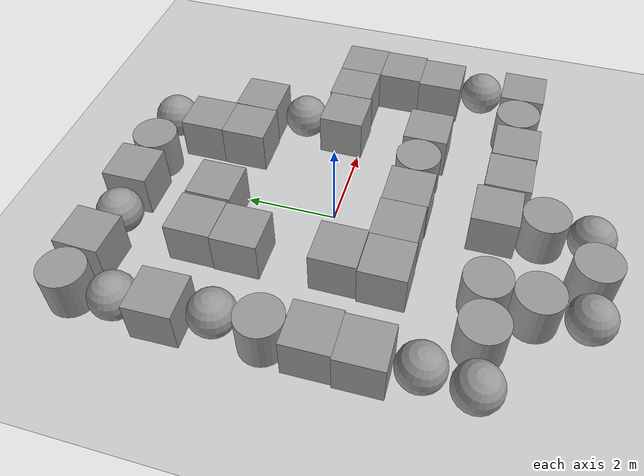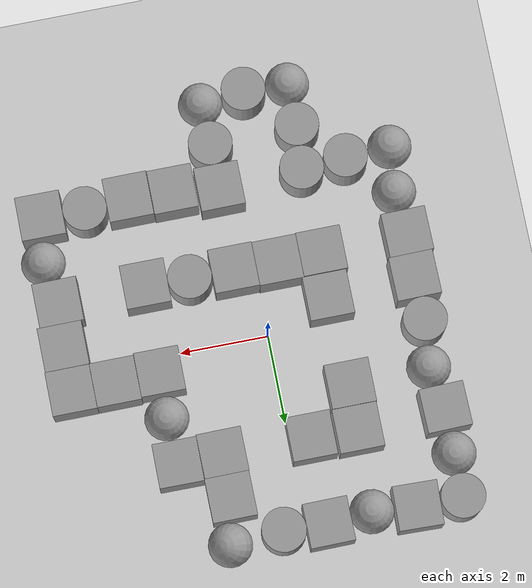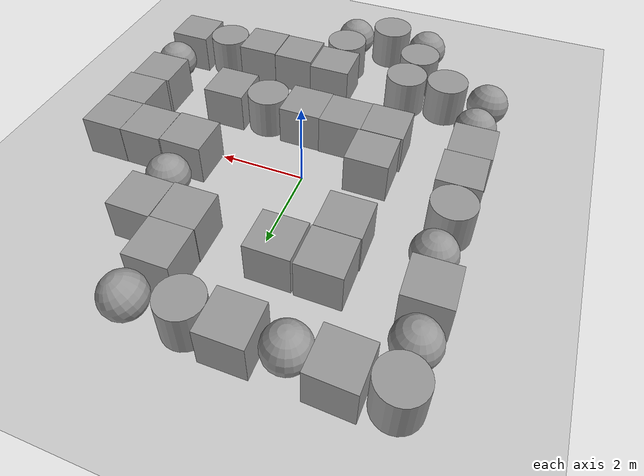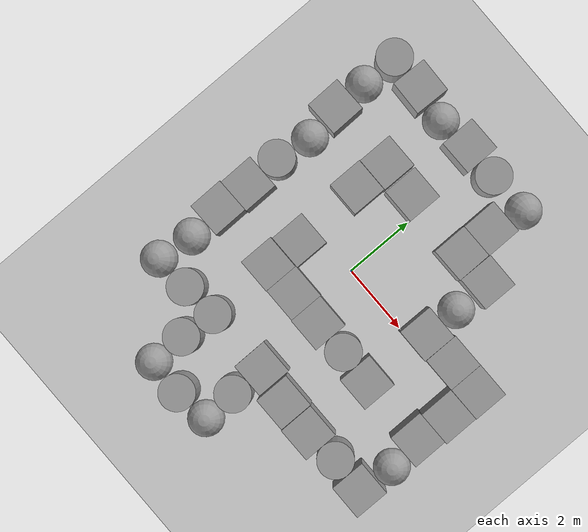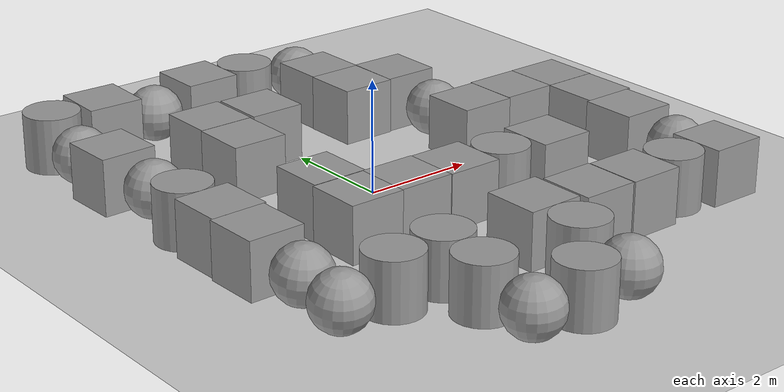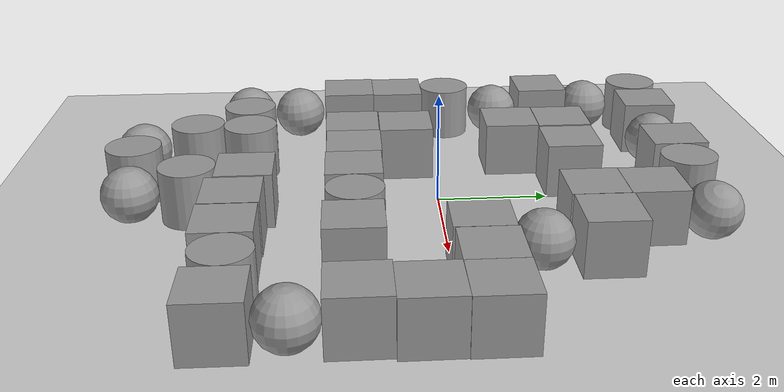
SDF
<sdf version="1.6">
 <world name="default">
  <light name="sun" type="directional">
   <pose>0 0 10 0 -0 0</pose>
   <diffuse>0.8 0.8 0.8 1</diffuse>
   <specular>0.2 0.2 0.2 1</specular>
   <attenuation>
    <range>1000</range>
    <constant>0.9</constant>
    <linear>0.01</linear>
    <quadratic>0.001</quadratic>
   </attenuation>
   <direction>-0.5 0.1 -0.9</direction>
  </light>
  <model name="ground_plane">
   <static>1</static>
   <link name="link">
    <collision name="collision">
     <geometry><plane><normal>0 0 1</normal><size>100 100</size></plane></geometry>
     <surface>
      <contact><collide_bitmask>65535</collide_bitmask></contact>
      <friction><ode><mu>100</mu><mu2>50</mu2></ode></friction>
     </surface>
    </collision>
    <visual name="visual">
     <cast_shadows>0</cast_shadows>
     <geometry><plane><normal>0 0 1</normal><size>100 100</size></plane></geometry>
     <material>
      <script><uri>file://media/materials/scripts/gazebo.material</uri><name>Gazebo/Grey</name></script>
     </material>
    </visual>
   </link>
  </model>
  <gravity>0 0 -9.8</gravity>
  <magnetic_field>6e-06 2.3e-05 -4.2e-05</magnetic_field>
  <atmosphere type="adiabatic"/>
  <physics name="default_physics" default="0" type="ode">
   <max_step_size>0.001</max_step_size>
   <real_time_factor>1</real_time_factor>
   <real_time_update_rate>1000</real_time_update_rate>
  </physics>
  <scene><ambient>0.4 0.4 0.4 1</ambient><background>0.7 0.7 0.7 1</background><shadows>1</shadows></scene>
  <audio><device>default</device></audio>
  <spherical_coordinates>
   <surface_model>EARTH_WGS84</surface_model>
   <latitude_deg>0</latitude_deg>
   <longitude_deg>0</longitude_deg>
   <elevation>0</elevation>
   <heading_deg>0</heading_deg>
  </spherical_coordinates>
  <model name="unit_box">
   <pose>-1.52173 -1.52448 0.5 0 -0 9.6e-05</pose>
   <link name="link">
    <inertial>
     <mass>1</mass>
     <inertia>
      <ixx>0.166667</ixx>
      <ixy>0</ixy>
      <ixz>0</ixz>
      <iyy>0.166667</iyy>
      <iyz>0</iyz>
      <izz>0.166667</izz>
     </inertia>
    </inertial>
    <collision name="collision"><geometry><box><size>1 1 1</size></box></geometry></collision>
    <visual name="visual">
     <geometry><box><size>1 1 1</size></box></geometry>
     <material>
      <script><name>Gazebo/Grey</name><uri>file://media/materials/scripts/gazebo.material</uri></script>
     </material>
    </visual>
   </link>
  </model>
  <model name="unit_box_0">
   <pose>-0.521576 -1.51043 0.5 0 -0 0.000106</pose>
   <link name="link">
    <inertial>
     <mass>1</mass>
     <inertia>
      <ixx>0.166667</ixx>
      <ixy>0</ixy>
      <ixz>0</ixz>
      <iyy>0.166667</iyy>
      <iyz>0</iyz>
      <izz>0.166667</izz>
     </inertia>
    </inertial>
    <collision name="collision"><geometry><box><size>1 1 1</size></box></geometry></collision>
    <visual name="visual">
     <geometry><box><size>1 1 1</size></box></geometry>
     <material>
      <script><name>Gazebo/Grey</name><uri>file://media/materials/scripts/gazebo.material</uri></script>
     </material>
    </visual>
   </link>
  </model>
  <model name="unit_box_1">
   <pose>0.478462 -1.52753 0.5 0 -0 8.8e-05</pose>
   <link name="link">
    <inertial>
     <mass>1</mass>
     <inertia>
      <ixx>0.166667</ixx>
      <ixy>0</ixy>
      <ixz>0</ixz>
      <iyy>0.166667</iyy>
      <iyz>0</iyz>
      <izz>0.166667</izz>
     </inertia>
    </inertial>
    <collision name="collision"><geometry><box><size>1 1 1</size></box></geometry></collision>
    <visual name="visual">
     <geometry><box><size>1 1 1</size></box></geometry>
     <material>
      <script><name>Gazebo/Grey</name><uri>file://media/materials/scripts/gazebo.material</uri></script>
     </material>
    </visual>
   </link>
  </model>
  <model name="unit_box_2">
   <pose>-1.47189 -0.51075 0.5 0 -0 0.001194</pose>
   <link name="link">
    <inertial>
     <mass>1</mass>
     <inertia>
      <ixx>0.166667</ixx>
      <ixy>0</ixy>
      <ixz>0</ixz>
      <iyy>0.166667</iyy>
      <iyz>0</iyz>
      <izz>0.166667</izz>
     </inertia>
    </inertial>
    <collision name="collision"><geometry><box><size>1 1 1</size></box></geometry></collision>
    <visual name="visual">
     <geometry><box><size>1 1 1</size></box></geometry>
     <material>
      <script><name>Gazebo/Grey</name><uri>file://media/materials/scripts/gazebo.material</uri></script>
     </material>
    </visual>
   </link>
  </model>
  <model name="unit_box_4">
   <pose>-1.54883 1.52167 0.5 0 -0 0</pose>
   <link name="link">
    <inertial>
     <mass>1</mass>
     <inertia>
      <ixx>0.166667</ixx>
      <ixy>0</ixy>
      <ixz>0</ixz>
      <iyy>0.166667</iyy>
      <iyz>0</iyz>
      <izz>0.166667</izz>
     </inertia>
    </inertial>
    <collision name="collision"><geometry><box><size>1 1 1</size></box></geometry></collision>
    <visual name="visual">
     <geometry><box><size>1 1 1</size></box></geometry>
     <material>
      <script><name>Gazebo/Grey</name><uri>file://media/materials/scripts/gazebo.material</uri></script>
     </material>
    </visual>
   </link>
  </model>
  <model name="unit_box_5">
   <pose>-1.53002 2.52679 0.5 -0 -0 -0</pose>
   <link name="link">
    <inertial>
     <mass>1</mass>
     <inertia>
      <ixx>0.166667</ixx>
      <ixy>0</ixy>
      <ixz>0</ixz>
      <iyy>0.166667</iyy>
      <iyz>0</iyz>
      <izz>0.166667</izz>
     </inertia>
    </inertial>
    <collision name="collision"><geometry><box><size>1 1 1</size></box></geometry></collision>
    <visual name="visual">
     <geometry><box><size>1 1 1</size></box></geometry>
     <material>
      <script><name>Gazebo/Grey</name><uri>file://media/materials/scripts/gazebo.material</uri></script>
     </material>
    </visual>
   </link>
  </model>
  <model name="unit_box_6">
   <pose>-0.478805 2.50195 0.5 0 -0 -0.000486</pose>
   <link name="link">
    <inertial>
     <mass>1</mass>
     <inertia>
      <ixx>0.166667</ixx>
      <ixy>0</ixy>
      <ixz>0</ixz>
      <iyy>0.166667</iyy>
      <iyz>0</iyz>
      <izz>0.166667</izz>
     </inertia>
    </inertial>
    <collision name="collision"><geometry><box><size>1 1 1</size></box></geometry></collision>
    <visual name="visual">
     <geometry><box><size>1 1 1</size></box></geometry>
     <material>
      <script><name>Gazebo/Grey</name><uri>file://media/materials/scripts/gazebo.material</uri></script>
     </material>
    </visual>
   </link>
  </model>
  <model name="unit_box_8">
   <pose>1.51965 2.48559 0.5 0 -0 0.006459</pose>
   <link name="link">
    <inertial>
     <mass>1</mass>
     <inertia>
      <ixx>0.166667</ixx>
      <ixy>0</ixy>
      <ixz>0</ixz>
      <iyy>0.166667</iyy>
      <iyz>0</iyz>
      <izz>0.166667</izz>
     </inertia>
    </inertial>
    <collision name="collision"><geometry><box><size>1 1 1</size></box></geometry></collision>
    <visual name="visual">
     <geometry><box><size>1 1 1</size></box></geometry>
     <material>
      <script><name>Gazebo/Grey</name><uri>file://media/materials/scripts/gazebo.material</uri></script>
     </material>
    </visual>
   </link>
  </model>
  <model name="unit_box_9">
   <pose>2.52576 2.51434 0.5 0 0 -0.006127</pose>
   <link name="link">
    <inertial>
     <mass>1</mass>
     <inertia>
      <ixx>0.166667</ixx>
      <ixy>0</ixy>
      <ixz>0</ixz>
      <iyy>0.166667</iyy>
      <iyz>0</iyz>
      <izz>0.166667</izz>
     </inertia>
    </inertial>
    <collision name="collision"><geometry><box><size>1 1 1</size></box></geometry></collision>
    <visual name="visual">
     <geometry><box><size>1 1 1</size></box></geometry>
     <material>
      <script><name>Gazebo/Grey</name><uri>file://media/materials/scripts/gazebo.material</uri></script>
     </material>
    </visual>
   </link>
  </model>
  <model name="unit_sphere">
   <pose>2.58206 1.44817 0.5 -0.017448 0.001388 0.009787</pose>
   <link name="link">
    <inertial>
     <mass>1</mass>
     <inertia><ixx>0.1</ixx><ixy>0</ixy><ixz>0</ixz><iyy>0.1</iyy><iyz>0</iyz><izz>0.1</izz></inertia>
    </inertial>
    <collision name="collision"><geometry><sphere><radius>0.5</radius></sphere></geometry></collision>
    <visual name="visual">
     <geometry><sphere><radius>0.5</radius></sphere></geometry>
     <material>
      <script><name>Gazebo/Grey</name><uri>file://media/materials/scripts/gazebo.material</uri></script>
     </material>
    </visual>
   </link>
  </model>
  <model name="unit_cylinder">
   <pose>1.47908 -1.51988 0.499994 -4e-06 1e-06 0.001973</pose>
   <link name="link">
    <inertial>
     <mass>1</mass>
     <inertia><ixx>0.145833</ixx><ixy>0</ixy><ixz>0</ixz><iyy>0.145833</iyy><iyz>0</iyz><izz>0.125</izz></inertia>
    </inertial>
    <collision name="collision">
     <geometry><cylinder><radius>0.5</radius><length>1</length></cylinder></geometry>
    </collision>
    <visual name="visual">
     <geometry><cylinder><radius>0.5</radius><length>1</length></cylinder></geometry>
     <material>
      <script><name>Gazebo/Grey</name><uri>file://media/materials/scripts/gazebo.material</uri></script>
     </material>
    </visual>
   </link>
  </model>
  <model name="unit_box_10">
   <pose>2.53768 0.439783 0.5 -0 -0 -0.004187</pose>
   <link name="link">
    <inertial>
     <mass>1</mass>
     <inertia>
      <ixx>0.166667</ixx>
      <ixy>0</ixy>
      <ixz>0</ixz>
      <iyy>0.166667</iyy>
      <iyz>0</iyz>
      <izz>0.166667</izz>
     </inertia>
    </inertial>
    <collision name="collision"><geometry><box><size>1 1 1</size></box></geometry></collision>
    <visual name="visual">
     <geometry><box><size>1 1 1</size></box></geometry>
     <material>
      <script><name>Gazebo/Grey</name><uri>file://media/materials/scripts/gazebo.material</uri></script>
     </material>
    </visual>
   </link>
  </model>
  <model name="unit_box_3">
   <pose>2.47904 -1.55707 0.5 -0 -0 -0.001522</pose>
   <link name="link">
    <inertial>
     <mass>1</mass>
     <inertia>
      <ixx>0.166667</ixx>
      <ixy>0</ixy>
      <ixz>0</ixz>
      <iyy>0.166667</iyy>
      <iyz>0</iyz>
      <izz>0.166667</izz>
     </inertia>
    </inertial>
    <collision name="collision"><geometry><box><size>1 1 1</size></box></geometry></collision>
    <visual name="visual">
     <geometry><box><size>1 1 1</size></box></geometry>
     <material>
      <script><name>Gazebo/Grey</name><uri>file://media/materials/scripts/gazebo.material</uri></script>
     </material>
    </visual>
   </link>
  </model>
  <model name="unit_box_7">
   <pose>3.54076 0.473404 0.5 0 -0 0.002006</pose>
   <link name="link">
    <inertial>
     <mass>1</mass>
     <inertia>
      <ixx>0.166667</ixx>
      <ixy>0</ixy>
      <ixz>0</ixz>
      <iyy>0.166667</iyy>
      <iyz>0</iyz>
      <izz>0.166667</izz>
     </inertia>
    </inertial>
    <collision name="collision"><geometry><box><size>1 1 1</size></box></geometry></collision>
    <visual name="visual">
     <geometry><box><size>1 1 1</size></box></geometry>
     <material>
      <script><name>Gazebo/Grey</name><uri>file://media/materials/scripts/gazebo.material</uri></script>
     </material>
    </visual>
   </link>
  </model>
  <model name="unit_box_11">
   <pose>4.54172 0.478821 0.5 0 -0 0.00104</pose>
   <link name="link">
    <inertial>
     <mass>1</mass>
     <inertia>
      <ixx>0.166667</ixx>
      <ixy>0</ixy>
      <ixz>0</ixz>
      <iyy>0.166667</iyy>
      <iyz>0</iyz>
      <izz>0.166667</izz>
     </inertia>
    </inertial>
    <collision name="collision"><geometry><box><size>1 1 1</size></box></geometry></collision>
    <visual name="visual">
     <geometry><box><size>1 1 1</size></box></geometry>
     <material>
      <script><name>Gazebo/Grey</name><uri>file://media/materials/scripts/gazebo.material</uri></script>
     </material>
    </visual>
   </link>
  </model>
  <model name="unit_box_12">
   <pose>4.52877 -0.523191 0.499995 -9e-06 0 0.004984</pose>
   <link name="link">
    <inertial>
     <mass>1</mass>
     <inertia>
      <ixx>0.166667</ixx>
      <ixy>0</ixy>
      <ixz>0</ixz>
      <iyy>0.166667</iyy>
      <iyz>0</iyz>
      <izz>0.166667</izz>
     </inertia>
    </inertial>
    <collision name="collision"><geometry><box><size>1 1 1</size></box></geometry></collision>
    <visual name="visual">
     <geometry><box><size>1 1 1</size></box></geometry>
     <material>
      <script><name>Gazebo/Grey</name><uri>file://media/materials/scripts/gazebo.material</uri></script>
     </material>
    </visual>
   </link>
  </model>
  <model name="unit_box_13">
   <pose>4.46537 -1.52353 0.499995 9e-06 -0 0.004975</pose>
   <link name="link">
    <inertial>
     <mass>1</mass>
     <inertia>
      <ixx>0.166667</ixx>
      <ixy>0</ixy>
      <ixz>0</ixz>
      <iyy>0.166667</iyy>
      <iyz>0</iyz>
      <izz>0.166667</izz>
     </inertia>
    </inertial>
    <collision name="collision"><geometry><box><size>1 1 1</size></box></geometry></collision>
    <visual name="visual">
     <geometry><box><size>1 1 1</size></box></geometry>
     <material>
      <script><name>Gazebo/Grey</name><uri>file://media/materials/scripts/gazebo.material</uri></script>
     </material>
    </visual>
   </link>
  </model>
  <model name="unit_sphere_0">
   <pose>4.63252 -2.52273 0.5 0.000918 0.0072 0.075662</pose>
   <link name="link">
    <inertial>
     <mass>1</mass>
     <inertia><ixx>0.1</ixx><ixy>0</ixy><ixz>0</ixz><iyy>0.1</iyy><iyz>0</iyz><izz>0.1</izz></inertia>
    </inertial>
    <collision name="collision"><geometry><sphere><radius>0.5</radius></sphere></geometry></collision>
    <visual name="visual">
     <geometry><sphere><radius>0.5</radius></sphere></geometry>
     <material>
      <script><name>Gazebo/Grey</name><uri>file://media/materials/scripts/gazebo.material</uri></script>
     </material>
    </visual>
   </link>
  </model>
  <model name="unit_cylinder_0">
   <pose>3.4862 -3.49364 0.499991 -2e-06 -2e-06 -0.030264</pose>
   <link name="link">
    <inertial>
     <mass>1</mass>
     <inertia><ixx>0.145833</ixx><ixy>0</ixy><ixz>0</ixz><iyy>0.145833</iyy><iyz>0</iyz><izz>0.125</izz></inertia>
    </inertial>
    <collision name="collision">
     <geometry><cylinder><radius>0.5</radius><length>1</length></cylinder></geometry>
    </collision>
    <visual name="visual">
     <geometry><cylinder><radius>0.5</radius><length>1</length></cylinder></geometry>
     <material>
      <script><name>Gazebo/Grey</name><uri>file://media/materials/scripts/gazebo.material</uri></script>
     </material>
    </visual>
   </link>
  </model>
  <model name="unit_box_14">
   <pose>4.4861 -3.52231 0.5 -0 -0 -0.004135</pose>
   <link name="link">
    <inertial>
     <mass>1</mass>
     <inertia>
      <ixx>0.166667</ixx>
      <ixy>0</ixy>
      <ixz>0</ixz>
      <iyy>0.166667</iyy>
      <iyz>0</iyz>
      <izz>0.166667</izz>
     </inertia>
    </inertial>
    <collision name="collision"><geometry><box><size>1 1 1</size></box></geometry></collision>
    <visual name="visual">
     <geometry><box><size>1 1 1</size></box></geometry>
     <material>
      <script><name>Gazebo/Grey</name><uri>file://media/materials/scripts/gazebo.material</uri></script>
     </material>
    </visual>
   </link>
  </model>
  <model name="unit_box_15">
   <pose>2.48647 -3.56815 0.5 0 -0 0.003692</pose>
   <link name="link">
    <inertial>
     <mass>1</mass>
     <inertia>
      <ixx>0.166667</ixx>
      <ixy>0</ixy>
      <ixz>0</ixz>
      <iyy>0.166667</iyy>
      <iyz>0</iyz>
      <izz>0.166667</izz>
     </inertia>
    </inertial>
    <collision name="collision"><geometry><box><size>1 1 1</size></box></geometry></collision>
    <visual name="visual">
     <geometry><box><size>1 1 1</size></box></geometry>
     <material>
      <script><name>Gazebo/Grey</name><uri>file://media/materials/scripts/gazebo.material</uri></script>
     </material>
    </visual>
   </link>
  </model>
  <model name="unit_box_16">
   <pose>1.47333 -3.54868 0.5 -0 -0 -0</pose>
   <link name="link">
    <inertial>
     <mass>1</mass>
     <inertia>
      <ixx>0.166667</ixx>
      <ixy>0</ixy>
      <ixz>0</ixz>
      <iyy>0.166667</iyy>
      <iyz>0</iyz>
      <izz>0.166667</izz>
     </inertia>
    </inertial>
    <collision name="collision"><geometry><box><size>1 1 1</size></box></geometry></collision>
    <visual name="visual">
     <geometry><box><size>1 1 1</size></box></geometry>
     <material>
      <script><name>Gazebo/Grey</name><uri>file://media/materials/scripts/gazebo.material</uri></script>
     </material>
    </visual>
   </link>
  </model>
  <model name="unit_box_17">
   <pose>0.430942 -3.41173 0.499995 0 1e-05 0.005255</pose>
   <link name="link">
    <inertial>
     <mass>1</mass>
     <inertia>
      <ixx>0.166667</ixx>
      <ixy>0</ixy>
      <ixz>0</ixz>
      <iyy>0.166667</iyy>
      <iyz>0</iyz>
      <izz>0.166667</izz>
     </inertia>
    </inertial>
    <collision name="collision"><geometry><box><size>1 1 1</size></box></geometry></collision>
    <visual name="visual">
     <geometry><box><size>1 1 1</size></box></geometry>
     <material>
      <script><name>Gazebo/Grey</name><uri>file://media/materials/scripts/gazebo.material</uri></script>
     </material>
    </visual>
   </link>
  </model>
  <model name="unit_box_18">
   <pose>1.52506 3.48592 0.5 0 -0 0.006947</pose>
   <link name="link">
    <inertial>
     <mass>1</mass>
     <inertia>
      <ixx>0.166667</ixx>
      <ixy>0</ixy>
      <ixz>0</ixz>
      <iyy>0.166667</iyy>
      <iyz>0</iyz>
      <izz>0.166667</izz>
     </inertia>
    </inertial>
    <collision name="collision"><geometry><box><size>1 1 1</size></box></geometry></collision>
    <visual name="visual">
     <geometry><box><size>1 1 1</size></box></geometry>
     <material>
      <script><name>Gazebo/Grey</name><uri>file://media/materials/scripts/gazebo.material</uri></script>
     </material>
    </visual>
   </link>
  </model>
  <model name="unit_sphere_1">
   <pose>1.73774 4.49047 0.5 0.030884 0.464683 0.182247</pose>
   <link name="link">
    <inertial>
     <mass>1</mass>
     <inertia><ixx>0.1</ixx><ixy>0</ixy><ixz>0</ixz><iyy>0.1</iyy><iyz>0</iyz><izz>0.1</izz></inertia>
    </inertial>
    <collision name="collision"><geometry><sphere><radius>0.5</radius></sphere></geometry></collision>
    <visual name="visual">
     <geometry><sphere><radius>0.5</radius></sphere></geometry>
     <material>
      <script><name>Gazebo/Grey</name><uri>file://media/materials/scripts/gazebo.material</uri></script>
     </material>
    </visual>
   </link>
  </model>
  <model name="unit_cylinder_1">
   <pose>0.522936 4.42045 0.5 0 -0 -0.000323</pose>
   <link name="link">
    <inertial>
     <mass>1</mass>
     <inertia><ixx>0.145833</ixx><ixy>0</ixy><ixz>0</ixz><iyy>0.145833</iyy><iyz>0</iyz><izz>0.125</izz></inertia>
    </inertial>
    <collision name="collision">
     <geometry><cylinder><radius>0.5</radius><length>1</length></cylinder></geometry>
    </collision>
    <visual name="visual">
     <geometry><cylinder><radius>0.5</radius><length>1</length></cylinder></geometry>
     <material>
      <script><name>Gazebo/Grey</name><uri>file://media/materials/scripts/gazebo.material</uri></script>
     </material>
    </visual>
   </link>
  </model>
  <model name="unit_box_19">
   <pose>-0.477771 4.4502 0.5 0 -0 0.00815</pose>
   <link name="link">
    <inertial>
     <mass>1</mass>
     <inertia>
      <ixx>0.166667</ixx>
      <ixy>0</ixy>
      <ixz>0</ixz>
      <iyy>0.166667</iyy>
      <iyz>0</iyz>
      <izz>0.166667</izz>
     </inertia>
    </inertial>
    <collision name="collision"><geometry><box><size>1 1 1</size></box></geometry></collision>
    <visual name="visual">
     <geometry><box><size>1 1 1</size></box></geometry>
     <material>
      <script><name>Gazebo/Grey</name><uri>file://media/materials/scripts/gazebo.material</uri></script>
     </material>
    </visual>
   </link>
  </model>
  <model name="unit_sphere_2">
   <pose>-1.47758 4.36676 0.5 0.029382 -0.000229 0.013137</pose>
   <link name="link">
    <inertial>
     <mass>1</mass>
     <inertia><ixx>0.1</ixx><ixy>0</ixy><ixz>0</ixz><iyy>0.1</iyy><iyz>0</iyz><izz>0.1</izz></inertia>
    </inertial>
    <collision name="collision"><geometry><sphere><radius>0.5</radius></sphere></geometry></collision>
    <visual name="visual">
     <geometry><sphere><radius>0.5</radius></sphere></geometry>
     <material>
      <script><name>Gazebo/Grey</name><uri>file://media/materials/scripts/gazebo.material</uri></script>
     </material>
    </visual>
   </link>
  </model>
  <model name="unit_box_20">
   <pose>-2.47507 4.46906 0.499995 0 -1e-05 -0.029551</pose>
   <link name="link">
    <inertial>
     <mass>1</mass>
     <inertia>
      <ixx>0.166667</ixx>
      <ixy>0</ixy>
      <ixz>0</ixz>
      <iyy>0.166667</iyy>
      <iyz>0</iyz>
      <izz>0.166667</izz>
     </inertia>
    </inertial>
    <collision name="collision"><geometry><box><size>1 1 1</size></box></geometry></collision>
    <visual name="visual">
     <geometry><box><size>1 1 1</size></box></geometry>
     <material>
      <script><name>Gazebo/Grey</name><uri>file://media/materials/scripts/gazebo.material</uri></script>
     </material>
    </visual>
   </link>
  </model>
  <model name="unit_cylinder_2">
   <pose>-3.49536 4.45143 0.499993 -3e-06 -4e-06 -9.3e-05</pose>
   <link name="link">
    <inertial>
     <mass>1</mass>
     <inertia><ixx>0.145833</ixx><ixy>0</ixy><ixz>0</ixz><iyy>0.145833</iyy><iyz>0</iyz><izz>0.125</izz></inertia>
    </inertial>
    <collision name="collision">
     <geometry><cylinder><radius>0.5</radius><length>1</length></cylinder></geometry>
    </collision>
    <visual name="visual">
     <geometry><cylinder><radius>0.5</radius><length>1</length></cylinder></geometry>
     <material>
      <script><name>Gazebo/Grey</name><uri>file://media/materials/scripts/gazebo.material</uri></script>
     </material>
    </visual>
   </link>
  </model>
  <model name="unit_sphere_3">
   <pose>-3.52517 3.45165 0.5 -0.007485 -0.028451 -0.059807</pose>
   <link name="link">
    <inertial>
     <mass>1</mass>
     <inertia><ixx>0.1</ixx><ixy>0</ixy><ixz>0</ixz><iyy>0.1</iyy><iyz>0</iyz><izz>0.1</izz></inertia>
    </inertial>
    <collision name="collision"><geometry><sphere><radius>0.5</radius></sphere></geometry></collision>
    <visual name="visual">
     <geometry><sphere><radius>0.5</radius></sphere></geometry>
     <material>
      <script><name>Gazebo/Grey</name><uri>file://media/materials/scripts/gazebo.material</uri></script>
     </material>
    </visual>
   </link>
  </model>
  <model name="unit_box_21">
   <pose>-3.51198 2.45128 0.5 0 -0 0.02279</pose>
   <link name="link">
    <inertial>
     <mass>1</mass>
     <inertia>
      <ixx>0.166667</ixx>
      <ixy>0</ixy>
      <ixz>0</ixz>
      <iyy>0.166667</iyy>
      <iyz>0</iyz>
      <izz>0.166667</izz>
     </inertia>
    </inertial>
    <collision name="collision"><geometry><box><size>1 1 1</size></box></geometry></collision>
    <visual name="visual">
     <geometry><box><size>1 1 1</size></box></geometry>
     <material>
      <script><name>Gazebo/Grey</name><uri>file://media/materials/scripts/gazebo.material</uri></script>
     </material>
    </visual>
   </link>
  </model>
  <model name="unit_sphere_4">
   <pose>-3.36658 1.44541 0.5 0.030351 0.013881 -0.070286</pose>
   <link name="link">
    <inertial>
     <mass>1</mass>
     <inertia><ixx>0.1</ixx><ixy>0</ixy><ixz>0</ixz><iyy>0.1</iyy><iyz>0</iyz><izz>0.1</izz></inertia>
    </inertial>
    <collision name="collision"><geometry><sphere><radius>0.5</radius></sphere></geometry></collision>
    <visual name="visual">
     <geometry><sphere><radius>0.5</radius></sphere></geometry>
     <material>
      <script><name>Gazebo/Grey</name><uri>file://media/materials/scripts/gazebo.material</uri></script>
     </material>
    </visual>
   </link>
  </model>
  <model name="unit_cylinder_3">
   <pose>-3.47488 0.424964 0.499999 2e-06 2e-06 -0.000306</pose>
   <link name="link">
    <inertial>
     <mass>1</mass>
     <inertia><ixx>0.145833</ixx><ixy>0</ixy><ixz>0</ixz><iyy>0.145833</iyy><iyz>0</iyz><izz>0.125</izz></inertia>
    </inertial>
    <collision name="collision">
     <geometry><cylinder><radius>0.5</radius><length>1</length></cylinder></geometry>
    </collision>
    <visual name="visual">
     <geometry><cylinder><radius>0.5</radius><length>1</length></cylinder></geometry>
     <material>
      <script><name>Gazebo/Grey</name><uri>file://media/materials/scripts/gazebo.material</uri></script>
     </material>
    </visual>
   </link>
  </model>
  <model name="unit_box_22">
   <pose>-3.45037 -0.574795 0.5 0 -0 0.014262</pose>
   <link name="link">
    <inertial>
     <mass>1</mass>
     <inertia>
      <ixx>0.166667</ixx>
      <ixy>0</ixy>
      <ixz>0</ixz>
      <iyy>0.166667</iyy>
      <iyz>0</iyz>
      <izz>0.166667</izz>
     </inertia>
    </inertial>
    <collision name="collision"><geometry><box><size>1 1 1</size></box></geometry></collision>
    <visual name="visual">
     <geometry><box><size>1 1 1</size></box></geometry>
     <material>
      <script><name>Gazebo/Grey</name><uri>file://media/materials/scripts/gazebo.material</uri></script>
     </material>
    </visual>
   </link>
  </model>
  <model name="unit_box_23">
   <pose>-3.48061 -1.57538 0.5 0 -0 0.014275</pose>
   <link name="link">
    <inertial>
     <mass>1</mass>
     <inertia>
      <ixx>0.166667</ixx>
      <ixy>0</ixy>
      <ixz>0</ixz>
      <iyy>0.166667</iyy>
      <iyz>0</iyz>
      <izz>0.166667</izz>
     </inertia>
    </inertial>
    <collision name="collision"><geometry><box><size>1 1 1</size></box></geometry></collision>
    <visual name="visual">
     <geometry><box><size>1 1 1</size></box></geometry>
     <material>
      <script><name>Gazebo/Grey</name><uri>file://media/materials/scripts/gazebo.material</uri></script>
     </material>
    </visual>
   </link>
  </model>
  <model name="unit_sphere_5">
   <pose>-3.41045 -2.60491 0.5 0.101643 0.022664 -0.193095</pose>
   <link name="link">
    <inertial>
     <mass>1</mass>
     <inertia><ixx>0.1</ixx><ixy>0</ixy><ixz>0</ixz><iyy>0.1</iyy><iyz>0</iyz><izz>0.1</izz></inertia>
    </inertial>
    <collision name="collision"><geometry><sphere><radius>0.5</radius></sphere></geometry></collision>
    <visual name="visual">
     <geometry><sphere><radius>0.5</radius></sphere></geometry>
     <material>
      <script><name>Gazebo/Grey</name><uri>file://media/materials/scripts/gazebo.material</uri></script>
     </material>
    </visual>
   </link>
  </model>
  <model name="unit_cylinder_4">
   <pose>-2.47569 -3.54974 0.499992 -3e-06 4e-06 0.043232</pose>
   <link name="link">
    <inertial>
     <mass>1</mass>
     <inertia><ixx>0.145833</ixx><ixy>0</ixy><ixz>0</ixz><iyy>0.145833</iyy><iyz>0</iyz><izz>0.125</izz></inertia>
    </inertial>
    <collision name="collision">
     <geometry><cylinder><radius>0.5</radius><length>1</length></cylinder></geometry>
    </collision>
    <visual name="visual">
     <geometry><cylinder><radius>0.5</radius><length>1</length></cylinder></geometry>
     <material>
      <script><name>Gazebo/Grey</name><uri>file://media/materials/scripts/gazebo.material</uri></script>
     </material>
    </visual>
   </link>
  </model>
  <model name="unit_sphere_6">
   <pose>-3.52086 -3.64281 0.5 0.136108 -0.09292 0.042849</pose>
   <link name="link">
    <inertial>
     <mass>1</mass>
     <inertia><ixx>0.1</ixx><ixy>0</ixy><ixz>0</ixz><iyy>0.1</iyy><iyz>0</iyz><izz>0.1</izz></inertia>
    </inertial>
    <collision name="collision"><geometry><sphere><radius>0.5</radius></sphere></geometry></collision>
    <visual name="visual">
     <geometry><sphere><radius>0.5</radius></sphere></geometry>
     <material>
      <script><name>Gazebo/Grey</name><uri>file://media/materials/scripts/gazebo.material</uri></script>
     </material>
    </visual>
   </link>
  </model>
  <model name="unit_cylinder_5">
   <pose>-1.45956 -3.46968 0.49999 0 -0 2e-05</pose>
   <link name="link">
    <inertial>
     <mass>1</mass>
     <inertia><ixx>0.145833</ixx><ixy>0</ixy><ixz>0</ixz><iyy>0.145833</iyy><iyz>0</iyz><izz>0.125</izz></inertia>
    </inertial>
    <collision name="collision">
     <geometry><cylinder><radius>0.5</radius><length>1</length></cylinder></geometry>
    </collision>
    <visual name="visual">
     <geometry><cylinder><radius>0.5</radius><length>1</length></cylinder></geometry>
     <material>
      <script><name>Gazebo/Grey</name><uri>file://media/materials/scripts/gazebo.material</uri></script>
     </material>
    </visual>
   </link>
  </model>
  <model name="unit_cylinder_6">
   <pose>-1.54885 -4.46569 0.5 1e-06 -0 2e-05</pose>
   <link name="link">
    <inertial>
     <mass>1</mass>
     <inertia><ixx>0.145833</ixx><ixy>0</ixy><ixz>0</ixz><iyy>0.145833</iyy><iyz>0</iyz><izz>0.125</izz></inertia>
    </inertial>
    <collision name="collision">
     <geometry><cylinder><radius>0.5</radius><length>1</length></cylinder></geometry>
    </collision>
    <visual name="visual">
     <geometry><cylinder><radius>0.5</radius><length>1</length></cylinder></geometry>
     <material>
      <script><name>Gazebo/Grey</name><uri>file://media/materials/scripts/gazebo.material</uri></script>
     </material>
    </visual>
   </link>
  </model>
  <model name="unit_cylinder_7">
   <pose>-0.519397 -5.49397 0.5 0 -0 3.3e-05</pose>
   <link name="link">
    <inertial>
     <mass>1</mass>
     <inertia><ixx>0.145833</ixx><ixy>0</ixy><ixz>0</ixz><iyy>0.145833</iyy><iyz>0</iyz><izz>0.125</izz></inertia>
    </inertial>
    <collision name="collision">
     <geometry><cylinder><radius>0.5</radius><length>1</length></cylinder></geometry>
    </collision>
    <visual name="visual">
     <geometry><cylinder><radius>0.5</radius><length>1</length></cylinder></geometry>
     <material>
      <script><name>Gazebo/Grey</name><uri>file://media/materials/scripts/gazebo.material</uri></script>
     </material>
    </visual>
   </link>
  </model>
  <model name="unit_sphere_7">
   <pose>-1.53391 -5.50481 0.5 0.009566 -0.041554 -0.030295</pose>
   <link name="link">
    <inertial>
     <mass>1</mass>
     <inertia><ixx>0.1</ixx><ixy>0</ixy><ixz>0</ixz><iyy>0.1</iyy><iyz>0</iyz><izz>0.1</izz></inertia>
    </inertial>
    <collision name="collision"><geometry><sphere><radius>0.5</radius></sphere></geometry></collision>
    <visual name="visual">
     <geometry><sphere><radius>0.5</radius></sphere></geometry>
     <material>
      <script><name>Gazebo/Grey</name><uri>file://media/materials/scripts/gazebo.material</uri></script>
     </material>
    </visual>
   </link>
  </model>
  <model name="unit_sphere_8">
   <pose>0.483826 -5.42017 0.5 0.014561 0.023067 -0.017734</pose>
   <link name="link">
    <inertial>
     <mass>1</mass>
     <inertia><ixx>0.1</ixx><ixy>0</ixy><ixz>0</ixz><iyy>0.1</iyy><iyz>0</iyz><izz>0.1</izz></inertia>
    </inertial>
    <collision name="collision"><geometry><sphere><radius>0.5</radius></sphere></geometry></collision>
    <visual name="visual">
     <geometry><sphere><radius>0.5</radius></sphere></geometry>
     <material>
      <script><name>Gazebo/Grey</name><uri>file://media/materials/scripts/gazebo.material</uri></script>
     </material>
    </visual>
   </link>
  </model>
  <model name="unit_cylinder_8">
   <pose>0.444735 -4.4117 0.499998 3e-06 4e-06 -0.002009</pose>
   <link name="link">
    <inertial>
     <mass>1</mass>
     <inertia><ixx>0.145833</ixx><ixy>0</ixy><ixz>0</ixz><iyy>0.145833</iyy><iyz>0</iyz><izz>0.125</izz></inertia>
    </inertial>
    <collision name="collision">
     <geometry><cylinder><radius>0.5</radius><length>1</length></cylinder></geometry>
    </collision>
    <visual name="visual">
     <geometry><cylinder><radius>0.5</radius><length>1</length></cylinder></geometry>
     <material>
      <script><name>Gazebo/Grey</name><uri>file://media/materials/scripts/gazebo.material</uri></script>
     </material>
    </visual>
   </link>
  </model>
 </world>
</sdf>
